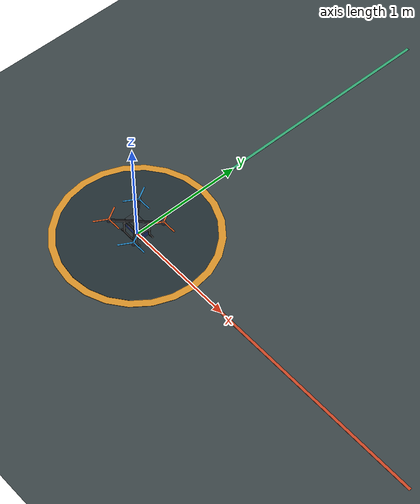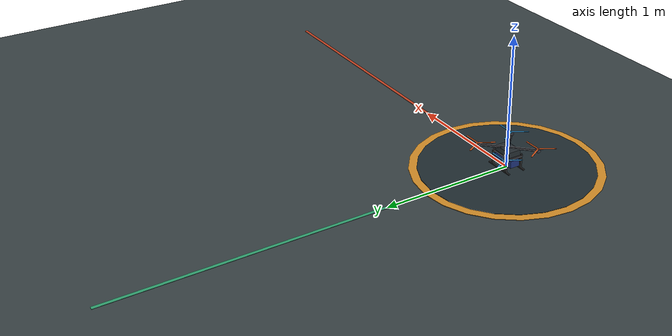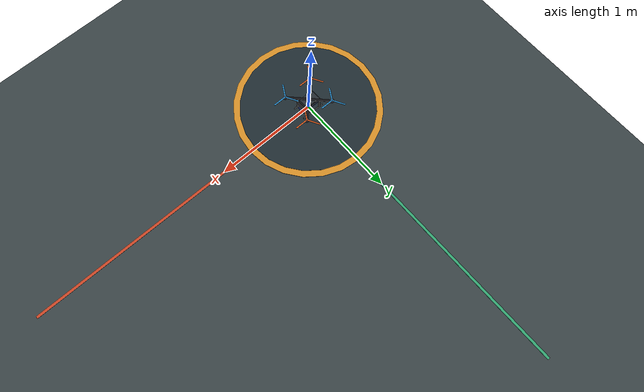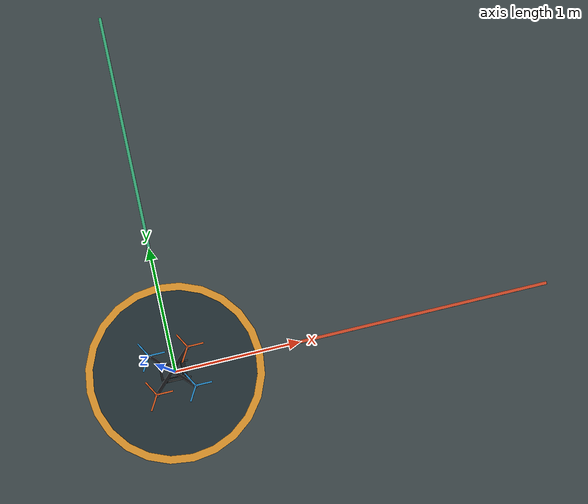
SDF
<?xml version="1.0"?>
<sdf version="1.9">
 <world name="mark4_validation">
  <gravity>0 0 -9.80665</gravity>
  <physics name="lockstep_1ms" type="ignored"><max_step_size>0.001</max_step_size><real_time_factor>1</real_time_factor></physics>
  <plugin filename="gz-sim-physics-system" name="gz::sim::systems::Physics"/>
  <plugin filename="gz-sim-user-commands-system" name="gz::sim::systems::UserCommands"/>
  <plugin filename="gz-sim-scene-broadcaster-system" name="gz::sim::systems::SceneBroadcaster"/>
  <plugin filename="gz-sim-imu-system" name="gz::sim::systems::Imu"/>
  <scene><ambient>0.65 0.65 0.65</ambient><background>0.55 0.66 0.76</background><shadows>true</shadows></scene>
  <spherical_coordinates><surface_model>EARTH_WGS84</surface_model><latitude_deg>-35.363262</latitude_deg><longitude_deg>149.165237</longitude_deg><elevation>584</elevation><heading_deg>0</heading_deg></spherical_coordinates>
  <light name="sun" type="directional"><pose>0 0 10 0 0 0</pose><cast_shadows>true</cast_shadows><diffuse>0.9 0.85 0.78 1</diffuse><specular>0.2 0.2 0.2 1</specular><direction>-0.5 0.3 -0.9</direction></light>
  <model name="test_pad"><static>true</static><link name="ground">
   <collision name="ground"><geometry><plane><normal>0 0 1</normal><size>100 100</size></plane></geometry></collision>
   <visual name="ground"><geometry><plane><normal>0 0 1</normal><size>100 100</size></plane></geometry><material><ambient>0.23 0.27 0.28 1</ambient><diffuse>0.23 0.27 0.28 1</diffuse></material></visual>
   <visual name="pad"><pose>0 0 0.003 0 0 0</pose><geometry><cylinder><radius>0.7</radius><length>0.004</length></cylinder></geometry><material><diffuse>0.85 0.57 0.16 1</diffuse></material></visual>
   <visual name="pad_inner"><pose>0 0 0.006 0 0 0</pose><geometry><cylinder><radius>0.64</radius><length>0.004</length></cylinder></geometry><material><diffuse>0.13 0.18 0.20 1</diffuse></material></visual>
   <visual name="east"><pose>2 0 0.003 0 0 0</pose><geometry><box><size>2 0.025 0.003</size></box></geometry><material><diffuse>0.8 0.28 0.15 1</diffuse></material></visual>
   <visual name="north"><pose>0 2 0.003 0 0 0</pose><geometry><box><size>0.025 2 0.003</size></box></geometry><material><diffuse>0.2 0.65 0.45 1</diffuse></material></visual>
  </link></model>
  <include><uri>model://mark4_v2_sitl</uri><name>icarus_mark4_v2_10</name><pose>0 0 0.16 0 0 0</pose></include>
 </world>
</sdf>

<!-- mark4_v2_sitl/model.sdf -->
<sdf version="1.9">
 <model name="icarus_mark4_v2_10">
  <include merge="true"><uri>model://mark4_v2</uri></include>
  <plugin filename="IcarusMotorBridge" name="icarus::MotorBridge">
    <topic_prefix>/icarus/vehicle_01/sitl/motor</topic_prefix>
    <thrust_coefficient>0.000017066574223409543</thrust_coefficient>
  </plugin>
  <plugin filename="ArduPilotPlugin" name="ArduPilotPlugin">
    <fdm_addr>127.0.0.1</fdm_addr><fdm_port_in>9002</fdm_port_in>
    <connectionTimeoutMaxCount>5</connectionTimeoutMaxCount>
    <lock_step>1</lock_step><no_time_sync>1</no_time_sync>
    <modelXYZToAirplaneXForwardZDown degrees="true">0 0 0 180 0 0</modelXYZToAirplaneXForwardZDown>
    <gazeboXYZToNED degrees="true">0 0 0 180 0 90</gazeboXYZToNED>
    <imuName>base_link::imu_sensor</imuName>
    <control channel="0">
      <jointName>rotor_01_joint</jointName>
      <type>COMMAND</type><cmd_topic>/icarus/vehicle_01/sitl/motor/0</cmd_topic>
      <multiplier>1</multiplier><offset>0</offset>
      <servo_min>1000</servo_min><servo_max>2000</servo_max>
    </control>
    <control channel="1">
      <jointName>rotor_02_joint</jointName>
      <type>COMMAND</type><cmd_topic>/icarus/vehicle_01/sitl/motor/1</cmd_topic>
      <multiplier>1</multiplier><offset>0</offset>
      <servo_min>1000</servo_min><servo_max>2000</servo_max>
    </control>
    <control channel="2">
      <jointName>rotor_03_joint</jointName>
      <type>COMMAND</type><cmd_topic>/icarus/vehicle_01/sitl/motor/2</cmd_topic>
      <multiplier>1</multiplier><offset>0</offset>
      <servo_min>1000</servo_min><servo_max>2000</servo_max>
    </control>
    <control channel="3">
      <jointName>rotor_04_joint</jointName>
      <type>COMMAND</type><cmd_topic>/icarus/vehicle_01/sitl/motor/3</cmd_topic>
      <multiplier>1</multiplier><offset>0</offset>
      <servo_min>1000</servo_min><servo_max>2000</servo_max>
    </control>
  </plugin>
 </model>
</sdf>

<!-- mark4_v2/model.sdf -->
<sdf version="1.9">
  <model name="icarus_mark4_v2_10" canonical_link="base_link">
    <static>false</static>
    <self_collide>false</self_collide>
    <link name="base_link">
      <!-- FRD-oriented IMU measurement, as expected by the ArduPilot JSON
           bridge. The underlying link stays FLU. IMU adds no duplicate mass. -->
      <sensor name="imu_sensor" type="imu">
        <pose>0 0 -0.04 3.141592653589793 0 0</pose>
        <always_on>true</always_on><update_rate>1000</update_rate>
      </sensor>
      <inertial>
        <pose>0 0 -0.04075064508562046 0 0 0</pose>
        <mass>4.263</mass>
        <inertia>
          <ixx>0.028023662663726013</ixx>
          <iyy>0.034223662663726014</iyy>
          <izz>0.038108129456</izz>
          <ixy>0</ixy>
          <ixz>0</ixz>
          <iyz>0</iyz>
        </inertia>
      </inertial>

      <!-- Reinforced 427 mm diagonal X arms. -->
      <collision name="arm_nw_se_collision">
        <pose>0 0 0 0 0 0.7853981634</pose>
        <geometry><box><size>0.427 0.024 0.007</size></box></geometry>
      </collision>
      <visual name="arm_nw_se_visual">
        <pose>0 0 0 0 0 0.7853981634</pose>
        <geometry><box><size>0.427 0.024 0.007</size></box></geometry>
        <material><diffuse>0.07 0.07 0.08 1</diffuse><specular>0.25 0.25 0.25 1</specular></material>
      </visual>
      <collision name="arm_ne_sw_collision">
        <pose>0 0 0 0 0 -0.7853981634</pose>
        <geometry><box><size>0.427 0.024 0.007</size></box></geometry>
      </collision>
      <visual name="arm_ne_sw_visual">
        <pose>0 0 0 0 0 -0.7853981634</pose>
        <geometry><box><size>0.427 0.024 0.007</size></box></geometry>
        <material><diffuse>0.07 0.07 0.08 1</diffuse><specular>0.25 0.25 0.25 1</specular></material>
      </visual>

      <!-- Custom lower structure, avionics shelf, and representative payload. -->
      <collision name="lower_plate_collision">
        <pose>0 0 -0.045 0 0 0</pose>
        <geometry><box><size>0.200 0.110 0.008</size></box></geometry>
      </collision>
      <visual name="lower_plate_visual">
        <pose>0 0 -0.045 0 0 0</pose>
        <geometry><box><size>0.200 0.110 0.008</size></box></geometry>
        <material><diffuse>0.10 0.10 0.11 1</diffuse></material>
      </visual>
      <collision name="avionics_bay_collision">
        <pose>-0.005 0 -0.018 0 0 0</pose>
        <geometry><box><size>0.150 0.100 0.040</size></box></geometry>
      </collision>
      <visual name="avionics_bay_visual">
        <pose>-0.005 0 -0.018 0 0 0</pose>
        <geometry><box><size>0.150 0.100 0.040</size></box></geometry>
        <material><diffuse>0.15 0.18 0.20 1</diffuse></material>
      </visual>
      <collision name="battery_collision">
        <pose>0 0 -0.090 0 0 0</pose>
        <geometry><box><size>0.180 0.075 0.055</size></box></geometry>
      </collision>
      <visual name="battery_visual">
        <pose>0 0 -0.090 0 0 0</pose>
        <geometry><box><size>0.180 0.075 0.055</size></box></geometry>
        <material><diffuse>0.12 0.20 0.48 1</diffuse></material>
      </visual>

      <!-- Two skids keep the battery clear of the ground during drop tests. -->
      <collision name="left_skid_collision">
        <pose>0 0.065 -0.150 0 0 0</pose>
        <geometry><box><size>0.230 0.012 0.012</size></box></geometry>
        <surface><friction><ode><mu>0.9</mu><mu2>0.9</mu2></ode></friction></surface>
      </collision>
      <visual name="left_skid_visual">
        <pose>0 0.065 -0.150 0 0 0</pose>
        <geometry><box><size>0.230 0.012 0.012</size></box></geometry>
        <material><diffuse>0.18 0.18 0.18 1</diffuse></material>
      </visual>
      <collision name="right_skid_collision">
        <pose>0 -0.065 -0.150 0 0 0</pose>
        <geometry><box><size>0.230 0.012 0.012</size></box></geometry>
        <surface><friction><ode><mu>0.9</mu><mu2>0.9</mu2></ode></friction></surface>
      </collision>
      <visual name="right_skid_visual">
        <pose>0 -0.065 -0.150 0 0 0</pose>
        <geometry><box><size>0.230 0.012 0.012</size></box></geometry>
        <material><diffuse>0.18 0.18 0.18 1</diffuse></material>
      </visual>
      <collision name="front_left_leg_collision">
        <pose>0.075 0.065 -0.092 0 0 0</pose>
        <geometry><box><size>0.012 0.012 0.110</size></box></geometry>
      </collision>
      <visual name="front_left_leg_visual">
        <pose>0.075 0.065 -0.092 0 0 0</pose>
        <geometry><box><size>0.012 0.012 0.110</size></box></geometry>
        <material><diffuse>0.18 0.18 0.18 1</diffuse></material>
      </visual>
      <collision name="front_right_leg_collision">
        <pose>0.075 -0.065 -0.092 0 0 0</pose>
        <geometry><box><size>0.012 0.012 0.110</size></box></geometry>
      </collision>
      <visual name="front_right_leg_visual">
        <pose>0.075 -0.065 -0.092 0 0 0</pose>
        <geometry><box><size>0.012 0.012 0.110</size></box></geometry>
        <material><diffuse>0.18 0.18 0.18 1</diffuse></material>
      </visual>
      <collision name="rear_left_leg_collision">
        <pose>-0.075 0.065 -0.092 0 0 0</pose>
        <geometry><box><size>0.012 0.012 0.110</size></box></geometry>
      </collision>
      <visual name="rear_left_leg_visual">
        <pose>-0.075 0.065 -0.092 0 0 0</pose>
        <geometry><box><size>0.012 0.012 0.110</size></box></geometry>
        <material><diffuse>0.18 0.18 0.18 1</diffuse></material>
      </visual>
      <collision name="rear_right_leg_collision">
        <pose>-0.075 -0.065 -0.092 0 0 0</pose>
        <geometry><box><size>0.012 0.012 0.110</size></box></geometry>
      </collision>
      <visual name="rear_right_leg_visual">
        <pose>-0.075 -0.065 -0.092 0 0 0</pose>
        <geometry><box><size>0.012 0.012 0.110</size></box></geometry>
        <material><diffuse>0.18 0.18 0.18 1</diffuse></material>
      </visual>
    </link>

    <link name="motor_01">
      <pose>0.15097 -0.15097 0 0 0 0</pose>
      <inertial>
        <mass>0.020</mass>
        <inertia><ixx>0.00008064500000000001</ixx><iyy>0.00008064500000000001</iyy><izz>0.00016129000000000002</izz><ixy>0</ixy><ixz>0</ixz><iyz>0</iyz></inertia>
      </inertial>
      <!-- Axisymmetric disk inertia approximates the spinning 20 g propeller.
           Visual blades have no collision; blade contact is not simulated yet. -->
      <visual name="hub"><geometry><cylinder><radius>0.018</radius><length>0.020</length></cylinder></geometry>
        <material><diffuse>0.25 0.25 0.3 1</diffuse></material></visual>
      <visual name="blade_0">
        <pose>0.0635 0 0.012 0 0 0</pose>
        <geometry><box><size>0.127 0.012 0.002</size></box></geometry>
        <material><diffuse>0.15 0.55 0.8 1</diffuse></material>
      </visual>
      <visual name="blade_1">
        <pose>-0.0317500000003742 0.054992613140095806 0.012 0 0 2.0943951024</pose>
        <geometry><box><size>0.127 0.012 0.002</size></box></geometry>
        <material><diffuse>0.15 0.55 0.8 1</diffuse></material>
      </visual>
      <visual name="blade_2">
        <pose>-0.0317499999992516 -0.05499261314074394 0.012 0 0 4.1887902048</pose>
        <geometry><box><size>0.127 0.012 0.002</size></box></geometry>
        <material><diffuse>0.15 0.55 0.8 1</diffuse></material>
      </visual>
    </link>
    <joint name="rotor_01_joint" type="revolute">
      <parent>base_link</parent><child>motor_01</child>
      <axis><xyz>0 0 1</xyz><limit><lower>-1e16</lower><upper>1e16</upper></limit>
        <dynamics><damping>0</damping></dynamics></axis>
    </joint>
    <plugin filename="gz-sim-multicopter-motor-model-system" name="gz::sim::systems::MulticopterMotorModel">
      <robotNamespace>icarus/vehicle_01</robotNamespace>
      <jointName>rotor_01_joint</jointName><linkName>motor_01</linkName>
      <turningDirection>ccw</turningDirection>
      <actuator_number>0</actuator_number>
      <commandSubTopic>actuators/motor_speed</commandSubTopic>
      <motorType>velocity</motorType>
      <maxRotVelocity>1634.2564983974105</maxRotVelocity>
      <motorConstant>0.000017066574223409543</motorConstant>
      <momentConstant>0.016</momentConstant>
      <timeConstantUp>0.040</timeConstantUp><timeConstantDown>0.080</timeConstantDown>
      <rotorVelocitySlowdownSim>10</rotorVelocitySlowdownSim>
      <rotorDragCoefficient>0</rotorDragCoefficient><rollingMomentCoefficient>0</rollingMomentCoefficient>
    </plugin>

    <link name="motor_02">
      <pose>-0.15097 0.15097 0 0 0 0</pose>
      <inertial>
        <mass>0.020</mass>
        <inertia><ixx>0.00008064500000000001</ixx><iyy>0.00008064500000000001</iyy><izz>0.00016129000000000002</izz><ixy>0</ixy><ixz>0</ixz><iyz>0</iyz></inertia>
      </inertial>
      <!-- Axisymmetric disk inertia approximates the spinning 20 g propeller.
           Visual blades have no collision; blade contact is not simulated yet. -->
      <visual name="hub"><geometry><cylinder><radius>0.018</radius><length>0.020</length></cylinder></geometry>
        <material><diffuse>0.25 0.25 0.3 1</diffuse></material></visual>
      <visual name="blade_0">
        <pose>0.0635 0 0.012 0 0 0</pose>
        <geometry><box><size>0.127 0.012 0.002</size></box></geometry>
        <material><diffuse>0.15 0.55 0.8 1</diffuse></material>
      </visual>
      <visual name="blade_1">
        <pose>-0.0317500000003742 0.054992613140095806 0.012 0 0 2.0943951024</pose>
        <geometry><box><size>0.127 0.012 0.002</size></box></geometry>
        <material><diffuse>0.15 0.55 0.8 1</diffuse></material>
      </visual>
      <visual name="blade_2">
        <pose>-0.0317499999992516 -0.05499261314074394 0.012 0 0 4.1887902048</pose>
        <geometry><box><size>0.127 0.012 0.002</size></box></geometry>
        <material><diffuse>0.15 0.55 0.8 1</diffuse></material>
      </visual>
    </link>
    <joint name="rotor_02_joint" type="revolute">
      <parent>base_link</parent><child>motor_02</child>
      <axis><xyz>0 0 1</xyz><limit><lower>-1e16</lower><upper>1e16</upper></limit>
        <dynamics><damping>0</damping></dynamics></axis>
    </joint>
    <plugin filename="gz-sim-multicopter-motor-model-system" name="gz::sim::systems::MulticopterMotorModel">
      <robotNamespace>icarus/vehicle_01</robotNamespace>
      <jointName>rotor_02_joint</jointName><linkName>motor_02</linkName>
      <turningDirection>ccw</turningDirection>
      <actuator_number>1</actuator_number>
      <commandSubTopic>actuators/motor_speed</commandSubTopic>
      <motorType>velocity</motorType>
      <maxRotVelocity>1634.2564983974105</maxRotVelocity>
      <motorConstant>0.000017066574223409543</motorConstant>
      <momentConstant>0.016</momentConstant>
      <timeConstantUp>0.040</timeConstantUp><timeConstantDown>0.080</timeConstantDown>
      <rotorVelocitySlowdownSim>10</rotorVelocitySlowdownSim>
      <rotorDragCoefficient>0</rotorDragCoefficient><rollingMomentCoefficient>0</rollingMomentCoefficient>
    </plugin>

    <link name="motor_03">
      <pose>0.15097 0.15097 0 0 0 0</pose>
      <inertial>
        <mass>0.020</mass>
        <inertia><ixx>0.00008064500000000001</ixx><iyy>0.00008064500000000001</iyy><izz>0.00016129000000000002</izz><ixy>0</ixy><ixz>0</ixz><iyz>0</iyz></inertia>
      </inertial>
      <!-- Axisymmetric disk inertia approximates the spinning 20 g propeller.
           Visual blades have no collision; blade contact is not simulated yet. -->
      <visual name="hub"><geometry><cylinder><radius>0.018</radius><length>0.020</length></cylinder></geometry>
        <material><diffuse>0.25 0.25 0.3 1</diffuse></material></visual>
      <visual name="blade_0">
        <pose>0.0635 0 0.012 0 0 0</pose>
        <geometry><box><size>0.127 0.012 0.002</size></box></geometry>
        <material><diffuse>0.85 0.35 0.12 1</diffuse></material>
      </visual>
      <visual name="blade_1">
        <pose>-0.0317500000003742 0.054992613140095806 0.012 0 0 2.0943951024</pose>
        <geometry><box><size>0.127 0.012 0.002</size></box></geometry>
        <material><diffuse>0.85 0.35 0.12 1</diffuse></material>
      </visual>
      <visual name="blade_2">
        <pose>-0.0317499999992516 -0.05499261314074394 0.012 0 0 4.1887902048</pose>
        <geometry><box><size>0.127 0.012 0.002</size></box></geometry>
        <material><diffuse>0.85 0.35 0.12 1</diffuse></material>
      </visual>
    </link>
    <joint name="rotor_03_joint" type="revolute">
      <parent>base_link</parent><child>motor_03</child>
      <axis><xyz>0 0 1</xyz><limit><lower>-1e16</lower><upper>1e16</upper></limit>
        <dynamics><damping>0</damping></dynamics></axis>
    </joint>
    <plugin filename="gz-sim-multicopter-motor-model-system" name="gz::sim::systems::MulticopterMotorModel">
      <robotNamespace>icarus/vehicle_01</robotNamespace>
      <jointName>rotor_03_joint</jointName><linkName>motor_03</linkName>
      <turningDirection>cw</turningDirection>
      <actuator_number>2</actuator_number>
      <commandSubTopic>actuators/motor_speed</commandSubTopic>
      <motorType>velocity</motorType>
      <maxRotVelocity>1634.2564983974105</maxRotVelocity>
      <motorConstant>0.000017066574223409543</motorConstant>
      <momentConstant>0.016</momentConstant>
      <timeConstantUp>0.040</timeConstantUp><timeConstantDown>0.080</timeConstantDown>
      <rotorVelocitySlowdownSim>10</rotorVelocitySlowdownSim>
      <rotorDragCoefficient>0</rotorDragCoefficient><rollingMomentCoefficient>0</rollingMomentCoefficient>
    </plugin>

    <link name="motor_04">
      <pose>-0.15097 -0.15097 0 0 0 0</pose>
      <inertial>
        <mass>0.020</mass>
        <inertia><ixx>0.00008064500000000001</ixx><iyy>0.00008064500000000001</iyy><izz>0.00016129000000000002</izz><ixy>0</ixy><ixz>0</ixz><iyz>0</iyz></inertia>
      </inertial>
      <!-- Axisymmetric disk inertia approximates the spinning 20 g propeller.
           Visual blades have no collision; blade contact is not simulated yet. -->
      <visual name="hub"><geometry><cylinder><radius>0.018</radius><length>0.020</length></cylinder></geometry>
        <material><diffuse>0.25 0.25 0.3 1</diffuse></material></visual>
      <visual name="blade_0">
        <pose>0.0635 0 0.012 0 0 0</pose>
        <geometry><box><size>0.127 0.012 0.002</size></box></geometry>
        <material><diffuse>0.85 0.35 0.12 1</diffuse></material>
      </visual>
      <visual name="blade_1">
        <pose>-0.0317500000003742 0.054992613140095806 0.012 0 0 2.0943951024</pose>
        <geometry><box><size>0.127 0.012 0.002</size></box></geometry>
        <material><diffuse>0.85 0.35 0.12 1</diffuse></material>
      </visual>
      <visual name="blade_2">
        <pose>-0.0317499999992516 -0.05499261314074394 0.012 0 0 4.1887902048</pose>
        <geometry><box><size>0.127 0.012 0.002</size></box></geometry>
        <material><diffuse>0.85 0.35 0.12 1</diffuse></material>
      </visual>
    </link>
    <joint name="rotor_04_joint" type="revolute">
      <parent>base_link</parent><child>motor_04</child>
      <axis><xyz>0 0 1</xyz><limit><lower>-1e16</lower><upper>1e16</upper></limit>
        <dynamics><damping>0</damping></dynamics></axis>
    </joint>
    <plugin filename="gz-sim-multicopter-motor-model-system" name="gz::sim::systems::MulticopterMotorModel">
      <robotNamespace>icarus/vehicle_01</robotNamespace>
      <jointName>rotor_04_joint</jointName><linkName>motor_04</linkName>
      <turningDirection>cw</turningDirection>
      <actuator_number>3</actuator_number>
      <commandSubTopic>actuators/motor_speed</commandSubTopic>
      <motorType>velocity</motorType>
      <maxRotVelocity>1634.2564983974105</maxRotVelocity>
      <motorConstant>0.000017066574223409543</motorConstant>
      <momentConstant>0.016</momentConstant>
      <timeConstantUp>0.040</timeConstantUp><timeConstantDown>0.080</timeConstantDown>
      <rotorVelocitySlowdownSim>10</rotorVelocitySlowdownSim>
      <rotorDragCoefficient>0</rotorDragCoefficient><rollingMomentCoefficient>0</rollingMomentCoefficient>
    </plugin>

  </model>
</sdf>
